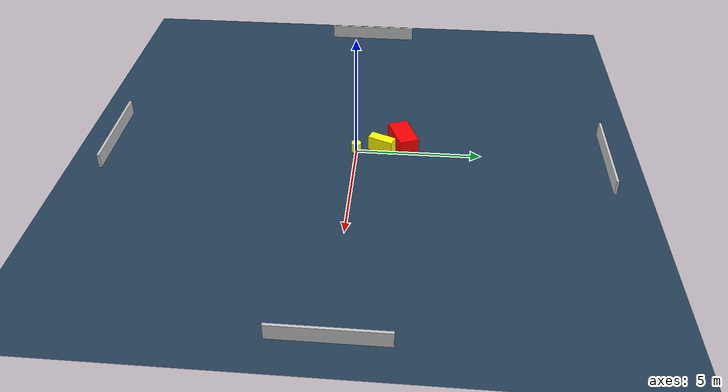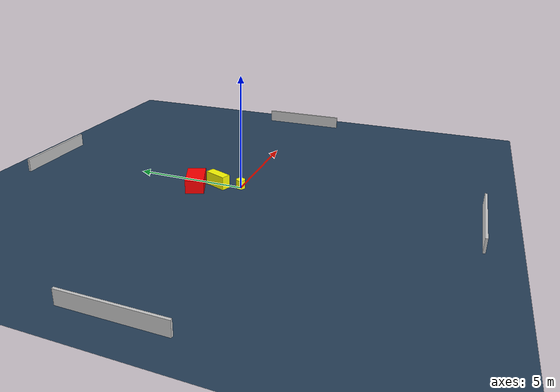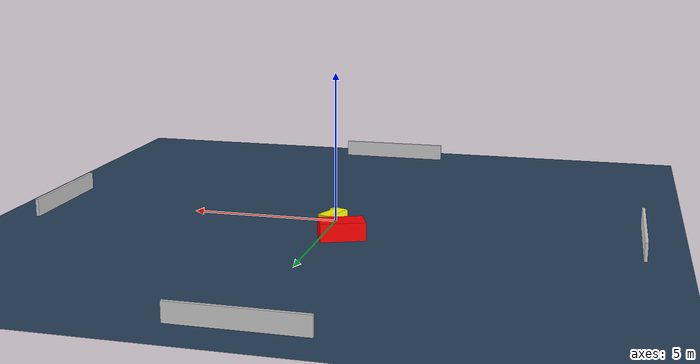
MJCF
<?xml version="1.0" ?>
<mujoco model="generated_environment">
  <option timestep="0.01" integrator="RK4" cone="elliptic"/>
  <default>
    <geom density="1"/>
  </default>
  <asset>
    <texture builtin="gradient" height="3072" name="skybox" rgb1="0.3 0.5 0.7" rgb2="0 0 0" type="skybox" width="512"/>
    <texture builtin="checker" height="300" name="groundplane" rgb1="0.2 0.3 0.4" rgb2="0.1 0.2 0.3" type="2d" width="300"/>
    <material name="groundplane" reflectance="0.2" texrepeat="5 5" texture="groundplane"/>
  </asset>
  <worldbody>
    <light dir="0 0 -1" directional="true" pos="0 0 1.5"/>
    <geom condim="3" friction="0.5 0.005 0.001" material="groundplane" name="floor" pos="0 0 0" size="0 0 0.05" type="plane"/>
    <body name="walls">
      <geom name="wall_1" condim="4" pos="-10.0 0.0 0.3" rgba="0.800000011920929 0.800000011920929 0.800000011920929 1.0" size="0.05 2.0 0.3" type="box"/>
      <geom name="wall_2" condim="4" pos="10.0 0.0 0.3" rgba="0.800000011920929 0.800000011920929 0.800000011920929 1.0" size="0.05 2.0 0.3" type="box"/>
      <geom name="wall_3" condim="4" pos="0.0 -10.0 0.3" rgba="0.800000011920929 0.800000011920929 0.800000011920929 1.0" size="2.0 0.05 0.3" type="box"/>
      <geom name="wall_4" condim="4" pos="0.0 10.0 0.3" rgba="0.800000011920929 0.800000011920929 0.800000011920929 1.0" size="2.0 0.05 0.3" type="box"/>
    </body>
    <body name="robot">
      <joint name="joint_x" type="slide" pos="0 0 0" axis="1 0 0"/>
      <joint name="joint_y" type="slide" pos="0 0 0" axis="0 1 0"/>
      <geom name="robot" type="cylinder" pos="0.0 0.0 0.2" size="0.2 0.2 0.0" mass="5.0" friction="1.0 0.005 0.0001" condim="4" rgba="1.0 1.0 0.0 1.0"/>
    </body>
    <body name="obstacle_1_movable">
      <geom name="obstacle_1_movable" condim="4" pos="-0.16011243633521027 1.0304779326656224 0.3" euler="0 0 247.2098187602714" friction="0.0 0.005 0.001" rgba="1.0 1.0 0.0 1.0" size="0.5191215440878441 0.20982408979790812 0.3" type="box" mass="0.1"/>
      <joint type="free"/>
    </body>
    <body name="obstacle_2_static">
      <geom name="obstacle_2_static" condim="4" pos="-0.6661889859321963 1.8820261325733918 0.3" euler="0 0 111.37105076299552" friction="0.0 0.005 0.001" rgba="1.0 0.0 0.0 1.0" size="0.40532008708941036 0.7339918098582547 0.3" type="box"/>
    </body>
  </worldbody>
  <actuator>
    <motor name="actuator_x" joint="joint_x" gear="1" ctrlrange="-1 1"/>
    <motor name="actuator_y" joint="joint_y" gear="1" ctrlrange="-1 1"/>
  </actuator>
</mujoco>
